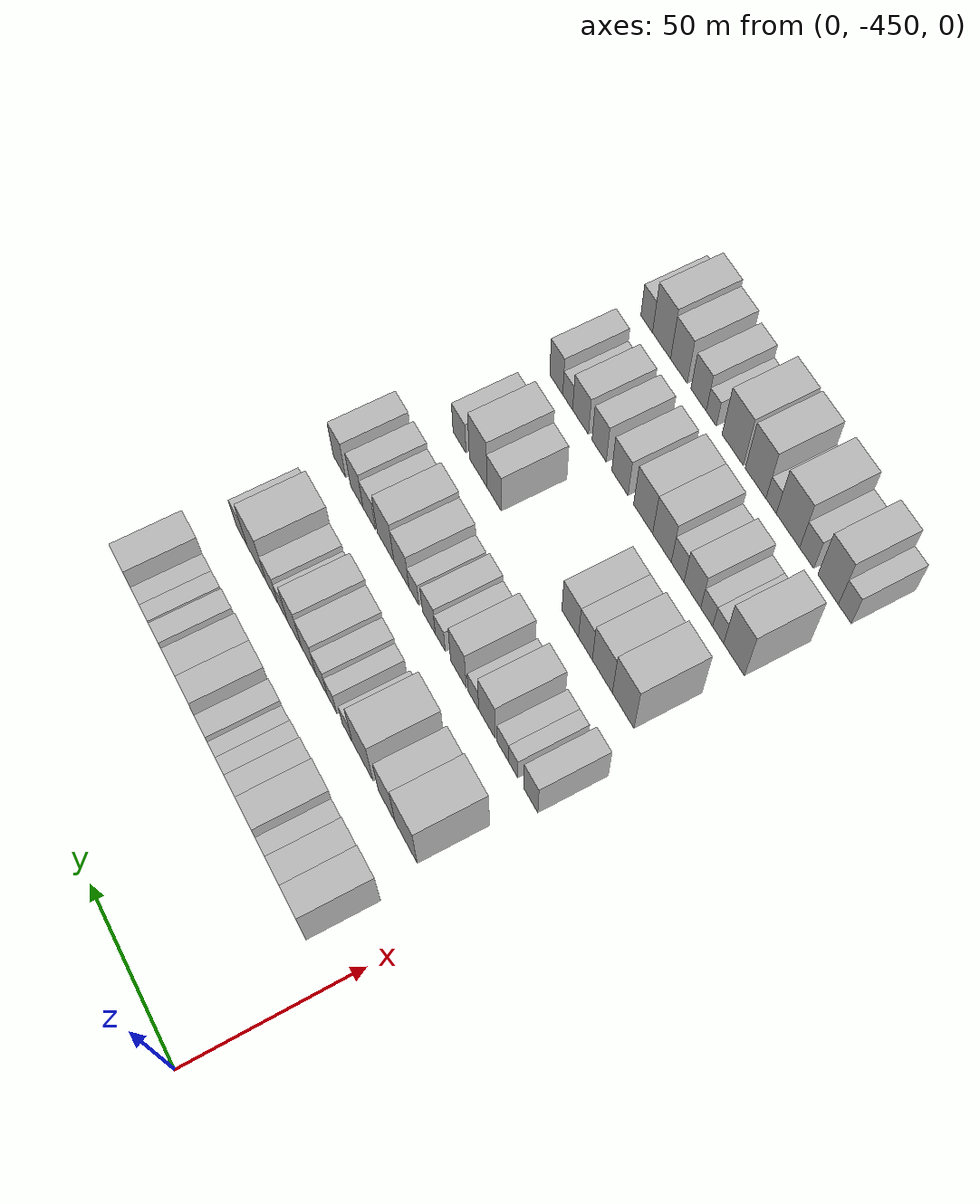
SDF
<sdf version="1.6">
 <world name="default">
  <model name="building_13">
   <static>1</static>
   <pose>50.0000 -432.8231 0 0.000000 0.000000 0.000000</pose>
   <link name="link">
    <pose>0 0 10.50 0 0 0</pose>
    <collision name="collision"><geometry><box><size>20.0000 8.9580 21.0000</size></box></geometry></collision>
    <visual name="visual">
     <cast_shadows>0</cast_shadows>
     <geometry><box><size>20.0000 8.9580 21.0000</size></box></geometry>
     <material>
      <script>
       <uri>model://HANNAS_wall/materials/scripts</uri>
       <uri>model://HANNAS_wall/materials/textures</uri>
       <name>vrc/HANNAS_wall</name>
      </script>
     </material>
    </visual>
   </link>
  </model>
  <model name="building_14">
   <static>1</static>
   <pose>50.0000 -423.9955 0 0.000000 0.000000 0.000000</pose>
   <link name="link">
    <pose>0 0 9.00 0 0 0</pose>
    <collision name="collision"><geometry><box><size>20.0000 8.6971 18.0000</size></box></geometry></collision>
    <visual name="visual">
     <cast_shadows>0</cast_shadows>
     <geometry><box><size>20.0000 8.6971 18.0000</size></box></geometry>
     <material>
      <script>
       <uri>model://HANNAS_wall/materials/scripts</uri>
       <uri>model://HANNAS_wall/materials/textures</uri>
       <name>vrc/HANNAS_wall</name>
      </script>
     </material>
    </visual>
   </link>
  </model>
  <model name="building_15">
   <static>1</static>
   <pose>50.0000 -416.5268 0 0.000000 0.000000 0.000000</pose>
   <link name="link">
    <pose>0 0 7.50 0 0 0</pose>
    <collision name="collision"><geometry><box><size>20.0000 6.2402 15.0000</size></box></geometry></collision>
    <visual name="visual">
     <cast_shadows>0</cast_shadows>
     <geometry><box><size>20.0000 6.2402 15.0000</size></box></geometry>
     <material>
      <script>
       <uri>model://HANNAS_wall/materials/scripts</uri>
       <uri>model://HANNAS_wall/materials/textures</uri>
       <name>vrc/HANNAS_wall</name>
      </script>
     </material>
    </visual>
   </link>
  </model>
  <model name="building_16">
   <static>1</static>
   <pose>50.0000 -408.7989 0 0.000000 0.000000 0.000000</pose>
   <link name="link">
    <pose>0 0 10.50 0 0 0</pose>
    <collision name="collision"><geometry><box><size>20.0000 9.2158 21.0000</size></box></geometry></collision>
    <visual name="visual">
     <cast_shadows>0</cast_shadows>
     <geometry><box><size>20.0000 9.2158 21.0000</size></box></geometry>
     <material>
      <script>
       <uri>model://HANNAS_wall/materials/scripts</uri>
       <uri>model://HANNAS_wall/materials/textures</uri>
       <name>vrc/HANNAS_wall</name>
      </script>
     </material>
    </visual>
   </link>
  </model>
  <model name="building_17">
   <static>1</static>
   <pose>50.0000 -400.5640 0 0.000000 0.000000 0.000000</pose>
   <link name="link">
    <pose>0 0 9.00 0 0 0</pose>
    <collision name="collision"><geometry><box><size>20.0000 7.2541 18.0000</size></box></geometry></collision>
    <visual name="visual">
     <cast_shadows>0</cast_shadows>
     <geometry><box><size>20.0000 7.2541 18.0000</size></box></geometry>
     <material>
      <script>
       <uri>model://HANNAS_wall/materials/scripts</uri>
       <uri>model://HANNAS_wall/materials/textures</uri>
       <name>vrc/HANNAS_wall</name>
      </script>
     </material>
    </visual>
   </link>
  </model>
  <model name="building_18">
   <static>1</static>
   <pose>50.0000 -393.8505 0 0.000000 0.000000 0.000000</pose>
   <link name="link">
    <pose>0 0 7.50 0 0 0</pose>
    <collision name="collision"><geometry><box><size>20.0000 6.1730 15.0000</size></box></geometry></collision>
    <visual name="visual">
     <cast_shadows>0</cast_shadows>
     <geometry><box><size>20.0000 6.1730 15.0000</size></box></geometry>
     <material>
      <script>
       <uri>model://HANNAS_wall/materials/scripts</uri>
       <uri>model://HANNAS_wall/materials/textures</uri>
       <name>vrc/HANNAS_wall</name>
      </script>
     </material>
    </visual>
   </link>
  </model>
  <model name="building_19">
   <static>1</static>
   <pose>50.0000 -387.8867 0 0.000000 0.000000 0.000000</pose>
   <link name="link">
    <pose>0 0 6.00 0 0 0</pose>
    <collision name="collision"><geometry><box><size>20.0000 5.7544 12.0000</size></box></geometry></collision>
    <visual name="visual">
     <cast_shadows>0</cast_shadows>
     <geometry><box><size>20.0000 5.7544 12.0000</size></box></geometry>
     <material>
      <script>
       <uri>model://HANNAS_wall/materials/scripts</uri>
       <uri>model://HANNAS_wall/materials/textures</uri>
       <name>vrc/HANNAS_wall</name>
      </script>
     </material>
    </visual>
   </link>
  </model>
  <model name="building_20">
   <static>1</static>
   <pose>50.0000 -381.6869 0 0.000000 0.000000 0.000000</pose>
   <link name="link">
    <pose>0 0 7.50 0 0 0</pose>
    <collision name="collision"><geometry><box><size>20.0000 6.6452 15.0000</size></box></geometry></collision>
    <visual name="visual">
     <cast_shadows>0</cast_shadows>
     <geometry><box><size>20.0000 6.6452 15.0000</size></box></geometry>
     <material>
      <script>
       <uri>model://HANNAS_wall/materials/scripts</uri>
       <uri>model://HANNAS_wall/materials/textures</uri>
       <name>vrc/HANNAS_wall</name>
      </script>
     </material>
    </visual>
   </link>
  </model>
  <model name="building_21">
   <static>1</static>
   <pose>50.0000 -372.2459 0 0.000000 0.000000 0.000000</pose>
   <link name="link">
    <pose>0 0 9.00 0 0 0</pose>
    <collision name="collision"><geometry><box><size>20.0000 8.2368 18.0000</size></box></geometry></collision>
    <visual name="visual">
     <cast_shadows>0</cast_shadows>
     <geometry><box><size>20.0000 8.2368 18.0000</size></box></geometry>
     <material>
      <script>
       <uri>model://HANNAS_wall/materials/scripts</uri>
       <uri>model://HANNAS_wall/materials/textures</uri>
       <name>vrc/HANNAS_wall</name>
      </script>
     </material>
    </visual>
   </link>
  </model>
  <model name="building_22">
   <static>1</static>
   <pose>50.0000 -363.9504 0 0.000000 0.000000 0.000000</pose>
   <link name="link">
    <pose>0 0 9.00 0 0 0</pose>
    <collision name="collision"><geometry><box><size>20.0000 8.3542 18.0000</size></box></geometry></collision>
    <visual name="visual">
     <cast_shadows>0</cast_shadows>
     <geometry><box><size>20.0000 8.3542 18.0000</size></box></geometry>
     <material>
      <script>
       <uri>model://HANNAS_wall/materials/scripts</uri>
       <uri>model://HANNAS_wall/materials/textures</uri>
       <name>vrc/HANNAS_wall</name>
      </script>
     </material>
    </visual>
   </link>
  </model>
  <model name="building_23">
   <static>1</static>
   <pose>50.0000 -353.6612 0 0.000000 0.000000 0.000000</pose>
   <link name="link">
    <pose>0 0 7.50 0 0 0</pose>
    <collision name="collision"><geometry><box><size>20.0000 6.2243 15.0000</size></box></geometry></collision>
    <visual name="visual">
     <cast_shadows>0</cast_shadows>
     <geometry><box><size>20.0000 6.2243 15.0000</size></box></geometry>
     <material>
      <script>
       <uri>model://HANNAS_wall/materials/scripts</uri>
       <uri>model://HANNAS_wall/materials/textures</uri>
       <name>vrc/HANNAS_wall</name>
      </script>
     </material>
    </visual>
   </link>
  </model>
  <model name="building_24">
   <static>1</static>
   <pose>50.0000 -345.9473 0 0.000000 0.000000 0.000000</pose>
   <link name="link">
    <pose>0 0 6.00 0 0 0</pose>
    <collision name="collision"><geometry><box><size>20.0000 5.2035 12.0000</size></box></geometry></collision>
    <visual name="visual">
     <cast_shadows>0</cast_shadows>
     <geometry><box><size>20.0000 5.2035 12.0000</size></box></geometry>
     <material>
      <script>
       <uri>model://HANNAS_wall/materials/scripts</uri>
       <uri>model://HANNAS_wall/materials/textures</uri>
       <name>vrc/HANNAS_wall</name>
      </script>
     </material>
    </visual>
   </link>
  </model>
  <model name="building_25">
   <static>1</static>
   <pose>50.0000 -340.5783 0 0.000000 0.000000 0.000000</pose>
   <link name="link">
    <pose>0 0 6.00 0 0 0</pose>
    <collision name="collision"><geometry><box><size>20.0000 5.5344 12.0000</size></box></geometry></collision>
    <visual name="visual">
     <cast_shadows>0</cast_shadows>
     <geometry><box><size>20.0000 5.5344 12.0000</size></box></geometry>
     <material>
      <script>
       <uri>model://HANNAS_wall/materials/scripts</uri>
       <uri>model://HANNAS_wall/materials/textures</uri>
       <name>vrc/HANNAS_wall</name>
      </script>
     </material>
    </visual>
   </link>
  </model>
  <model name="building_26">
   <static>1</static>
   <pose>50.0000 -333.3948 0 0.000000 0.000000 0.000000</pose>
   <link name="link">
    <pose>0 0 10.50 0 0 0</pose>
    <collision name="collision"><geometry><box><size>20.0000 8.8327 21.0000</size></box></geometry></collision>
    <visual name="visual">
     <cast_shadows>0</cast_shadows>
     <geometry><box><size>20.0000 8.8327 21.0000</size></box></geometry>
     <material>
      <script>
       <uri>model://HANNAS_wall/materials/scripts</uri>
       <uri>model://HANNAS_wall/materials/textures</uri>
       <name>vrc/HANNAS_wall</name>
      </script>
     </material>
    </visual>
   </link>
  </model>
  <model name="building_135">
   <static>1</static>
   <pose>82.0000 -427.3368 0 0.000000 0.000000 0.000000</pose>
   <link name="link">
    <pose>0 0 12.00 0 0 0</pose>
    <collision name="collision"><geometry><box><size>20.0000 11.9035 24.0000</size></box></geometry></collision>
    <visual name="visual">
     <cast_shadows>0</cast_shadows>
     <geometry><box><size>20.0000 11.9035 24.0000</size></box></geometry>
     <material>
      <script>
       <uri>model://HANNAS_wall/materials/scripts</uri>
       <uri>model://HANNAS_wall/materials/textures</uri>
       <name>vrc/HANNAS_wall</name>
      </script>
     </material>
    </visual>
   </link>
  </model>
  <model name="building_136">
   <static>1</static>
   <pose>82.0000 -416.8589 0 0.000000 0.000000 0.000000</pose>
   <link name="link">
    <pose>0 0 10.50 0 0 0</pose>
    <collision name="collision"><geometry><box><size>20.0000 9.0522 21.0000</size></box></geometry></collision>
    <visual name="visual">
     <cast_shadows>0</cast_shadows>
     <geometry><box><size>20.0000 9.0522 21.0000</size></box></geometry>
     <material>
      <script>
       <uri>model://HANNAS_wall/materials/scripts</uri>
       <uri>model://HANNAS_wall/materials/textures</uri>
       <name>vrc/HANNAS_wall</name>
      </script>
     </material>
    </visual>
   </link>
  </model>
  <model name="building_137">
   <static>1</static>
   <pose>82.0000 -403.5861 0 0.000000 0.000000 0.000000</pose>
   <link name="link">
    <pose>0 0 12.00 0 0 0</pose>
    <collision name="collision"><geometry><box><size>20.0000 11.4933 24.0000</size></box></geometry></collision>
    <visual name="visual">
     <cast_shadows>0</cast_shadows>
     <geometry><box><size>20.0000 11.4933 24.0000</size></box></geometry>
     <material>
      <script>
       <uri>model://HANNAS_wall/materials/scripts</uri>
       <uri>model://HANNAS_wall/materials/textures</uri>
       <name>vrc/HANNAS_wall</name>
      </script>
     </material>
    </visual>
   </link>
  </model>
  <model name="building_138">
   <static>1</static>
   <pose>82.0000 -394.9033 0 0.000000 0.000000 0.000000</pose>
   <link name="link">
    <pose>0 0 6.00 0 0 0</pose>
    <collision name="collision"><geometry><box><size>20.0000 5.8723 12.0000</size></box></geometry></collision>
    <visual name="visual">
     <cast_shadows>0</cast_shadows>
     <geometry><box><size>20.0000 5.8723 12.0000</size></box></geometry>
     <material>
      <script>
       <uri>model://HANNAS_wall/materials/scripts</uri>
       <uri>model://HANNAS_wall/materials/textures</uri>
       <name>vrc/HANNAS_wall</name>
      </script>
     </material>
    </visual>
   </link>
  </model>
  <model name="building_139">
   <static>1</static>
   <pose>82.0000 -386.2988 0 0.000000 0.000000 0.000000</pose>
   <link name="link">
    <pose>0 0 6.00 0 0 0</pose>
    <collision name="collision"><geometry><box><size>20.0000 5.3369 12.0000</size></box></geometry></collision>
    <visual name="visual">
     <cast_shadows>0</cast_shadows>
     <geometry><box><size>20.0000 5.3369 12.0000</size></box></geometry>
     <material>
      <script>
       <uri>model://HANNAS_wall/materials/scripts</uri>
       <uri>model://HANNAS_wall/materials/textures</uri>
       <name>vrc/HANNAS_wall</name>
      </script>
     </material>
    </visual>
   </link>
  </model>
  <model name="building_140">
   <static>1</static>
   <pose>82.0000 -380.3271 0 0.000000 0.000000 0.000000</pose>
   <link name="link">
    <pose>0 0 7.50 0 0 0</pose>
    <collision name="collision"><geometry><box><size>20.0000 6.6065 15.0000</size></box></geometry></collision>
    <visual name="visual">
     <cast_shadows>0</cast_shadows>
     <geometry><box><size>20.0000 6.6065 15.0000</size></box></geometry>
     <material>
      <script>
       <uri>model://HANNAS_wall/materials/scripts</uri>
       <uri>model://HANNAS_wall/materials/textures</uri>
       <name>vrc/HANNAS_wall</name>
      </script>
     </material>
    </visual>
   </link>
  </model>
  <model name="building_141">
   <static>1</static>
   <pose>82.0000 -372.7522 0 0.000000 0.000000 0.000000</pose>
   <link name="link">
    <pose>0 0 9.00 0 0 0</pose>
    <collision name="collision"><geometry><box><size>20.0000 8.5434 18.0000</size></box></geometry></collision>
    <visual name="visual">
     <cast_shadows>0</cast_shadows>
     <geometry><box><size>20.0000 8.5434 18.0000</size></box></geometry>
     <material>
      <script>
       <uri>model://HANNAS_wall/materials/scripts</uri>
       <uri>model://HANNAS_wall/materials/textures</uri>
       <name>vrc/HANNAS_wall</name>
      </script>
     </material>
    </visual>
   </link>
  </model>
  <model name="building_142">
   <static>1</static>
   <pose>82.0000 -364.2512 0 0.000000 0.000000 0.000000</pose>
   <link name="link">
    <pose>0 0 10.50 0 0 0</pose>
    <collision name="collision"><geometry><box><size>20.0000 8.4587 21.0000</size></box></geometry></collision>
    <visual name="visual">
     <cast_shadows>0</cast_shadows>
     <geometry><box><size>20.0000 8.4587 21.0000</size></box></geometry>
     <material>
      <script>
       <uri>model://HANNAS_wall/materials/scripts</uri>
       <uri>model://HANNAS_wall/materials/textures</uri>
       <name>vrc/HANNAS_wall</name>
      </script>
     </material>
    </visual>
   </link>
  </model>
  <model name="building_143">
   <static>1</static>
   <pose>82.0000 -357.2175 0 0.000000 0.000000 0.000000</pose>
   <link name="link">
    <pose>0 0 6.00 0 0 0</pose>
    <collision name="collision"><geometry><box><size>20.0000 5.6087 12.0000</size></box></geometry></collision>
    <visual name="visual">
     <cast_shadows>0</cast_shadows>
     <geometry><box><size>20.0000 5.6087 12.0000</size></box></geometry>
     <material>
      <script>
       <uri>model://HANNAS_wall/materials/scripts</uri>
       <uri>model://HANNAS_wall/materials/textures</uri>
       <name>vrc/HANNAS_wall</name>
      </script>
     </material>
    </visual>
   </link>
  </model>
  <model name="building_144">
   <static>1</static>
   <pose>82.0000 -350.7845 0 0.000000 0.000000 0.000000</pose>
   <link name="link">
    <pose>0 0 7.50 0 0 0</pose>
    <collision name="collision"><geometry><box><size>20.0000 7.2574 15.0000</size></box></geometry></collision>
    <visual name="visual">
     <cast_shadows>0</cast_shadows>
     <geometry><box><size>20.0000 7.2574 15.0000</size></box></geometry>
     <material>
      <script>
       <uri>model://HANNAS_wall/materials/scripts</uri>
       <uri>model://HANNAS_wall/materials/textures</uri>
       <name>vrc/HANNAS_wall</name>
      </script>
     </material>
    </visual>
   </link>
  </model>
  <model name="building_145">
   <static>1</static>
   <pose>82.0000 -341.2646 0 0.000000 0.000000 0.000000</pose>
   <link name="link">
    <pose>0 0 12.00 0 0 0</pose>
    <collision name="collision"><geometry><box><size>20.0000 11.7824 24.0000</size></box></geometry></collision>
    <visual name="visual">
     <cast_shadows>0</cast_shadows>
     <geometry><box><size>20.0000 11.7824 24.0000</size></box></geometry>
     <material>
      <script>
       <uri>model://HANNAS_wall/materials/scripts</uri>
       <uri>model://HANNAS_wall/materials/textures</uri>
       <name>vrc/HANNAS_wall</name>
      </script>
     </material>
    </visual>
   </link>
  </model>
  <model name="building_146">
   <static>1</static>
   <pose>82.0000 -332.0128 0 0.000000 0.000000 0.000000</pose>
   <link name="link">
    <pose>0 0 7.50 0 0 0</pose>
    <collision name="collision"><geometry><box><size>20.0000 6.7210 15.0000</size></box></geometry></collision>
    <visual name="visual">
     <cast_shadows>0</cast_shadows>
     <geometry><box><size>20.0000 6.7210 15.0000</size></box></geometry>
     <material>
      <script>
       <uri>model://HANNAS_wall/materials/scripts</uri>
       <uri>model://HANNAS_wall/materials/textures</uri>
       <name>vrc/HANNAS_wall</name>
      </script>
     </material>
    </visual>
   </link>
  </model>
  <model name="building_259">
   <static>1</static>
   <pose>114.0000 -432.4380 0 0.000000 0.000000 0.000000</pose>
   <link name="link">
    <pose>0 0 9.00 0 0 0</pose>
    <collision name="collision"><geometry><box><size>20.0000 7.3260 18.0000</size></box></geometry></collision>
    <visual name="visual">
     <cast_shadows>0</cast_shadows>
     <geometry><box><size>20.0000 7.3260 18.0000</size></box></geometry>
     <material>
      <script>
       <uri>model://HANNAS_wall/materials/scripts</uri>
       <uri>model://HANNAS_wall/materials/textures</uri>
       <name>vrc/HANNAS_wall</name>
      </script>
     </material>
    </visual>
   </link>
  </model>
  <model name="building_260">
   <static>1</static>
   <pose>114.0000 -423.3587 0 0.000000 0.000000 0.000000</pose>
   <link name="link">
    <pose>0 0 6.00 0 0 0</pose>
    <collision name="collision"><geometry><box><size>20.0000 4.8326 12.0000</size></box></geometry></collision>
    <visual name="visual">
     <cast_shadows>0</cast_shadows>
     <geometry><box><size>20.0000 4.8326 12.0000</size></box></geometry>
     <material>
      <script>
       <uri>model://HANNAS_wall/materials/scripts</uri>
       <uri>model://HANNAS_wall/materials/textures</uri>
       <name>vrc/HANNAS_wall</name>
      </script>
     </material>
    </visual>
   </link>
  </model>
  <model name="building_261">
   <static>1</static>
   <pose>114.0000 -417.9589 0 0.000000 0.000000 0.000000</pose>
   <link name="link">
    <pose>0 0 6.00 0 0 0</pose>
    <collision name="collision"><geometry><box><size>20.0000 5.9669 12.0000</size></box></geometry></collision>
    <visual name="visual">
     <cast_shadows>0</cast_shadows>
     <geometry><box><size>20.0000 5.9669 12.0000</size></box></geometry>
     <material>
      <script>
       <uri>model://HANNAS_wall/materials/scripts</uri>
       <uri>model://HANNAS_wall/materials/textures</uri>
       <name>vrc/HANNAS_wall</name>
      </script>
     </material>
    </visual>
   </link>
  </model>
  <model name="building_262">
   <static>1</static>
   <pose>114.0000 -409.5621 0 0.000000 0.000000 0.000000</pose>
   <link name="link">
    <pose>0 0 10.50 0 0 0</pose>
    <collision name="collision"><geometry><box><size>20.0000 8.8267 21.0000</size></box></geometry></collision>
    <visual name="visual">
     <cast_shadows>0</cast_shadows>
     <geometry><box><size>20.0000 8.8267 21.0000</size></box></geometry>
     <material>
      <script>
       <uri>model://HANNAS_wall/materials/scripts</uri>
       <uri>model://HANNAS_wall/materials/textures</uri>
       <name>vrc/HANNAS_wall</name>
      </script>
     </material>
    </visual>
   </link>
  </model>
  <model name="building_263">
   <static>1</static>
   <pose>114.0000 -402.2959 0 0.000000 0.000000 0.000000</pose>
   <link name="link">
    <pose>0 0 6.00 0 0 0</pose>
    <collision name="collision"><geometry><box><size>20.0000 5.7058 12.0000</size></box></geometry></collision>
    <visual name="visual">
     <cast_shadows>0</cast_shadows>
     <geometry><box><size>20.0000 5.7058 12.0000</size></box></geometry>
     <material>
      <script>
       <uri>model://HANNAS_wall/materials/scripts</uri>
       <uri>model://HANNAS_wall/materials/textures</uri>
       <name>vrc/HANNAS_wall</name>
      </script>
     </material>
    </visual>
   </link>
  </model>
  <model name="building_264">
   <static>1</static>
   <pose>114.0000 -394.1836 0 0.000000 0.000000 0.000000</pose>
   <link name="link">
    <pose>0 0 10.50 0 0 0</pose>
    <collision name="collision"><geometry><box><size>20.0000 8.5186 21.0000</size></box></geometry></collision>
    <visual name="visual">
     <cast_shadows>0</cast_shadows>
     <geometry><box><size>20.0000 8.5186 21.0000</size></box></geometry>
     <material>
      <script>
       <uri>model://HANNAS_wall/materials/scripts</uri>
       <uri>model://HANNAS_wall/materials/textures</uri>
       <name>vrc/HANNAS_wall</name>
      </script>
     </material>
    </visual>
   </link>
  </model>
  <model name="building_265">
   <static>1</static>
   <pose>114.0000 -384.1518 0 0.000000 0.000000 0.000000</pose>
   <link name="link">
    <pose>0 0 6.00 0 0 0</pose>
    <collision name="collision"><geometry><box><size>20.0000 5.5449 12.0000</size></box></geometry></collision>
    <visual name="visual">
     <cast_shadows>0</cast_shadows>
     <geometry><box><size>20.0000 5.5449 12.0000</size></box></geometry>
     <material>
      <script>
       <uri>model://HANNAS_wall/materials/scripts</uri>
       <uri>model://HANNAS_wall/materials/textures</uri>
       <name>vrc/HANNAS_wall</name>
      </script>
     </material>
    </visual>
   </link>
  </model>
  <model name="building_266">
   <static>1</static>
   <pose>114.0000 -377.8008 0 0.000000 0.000000 0.000000</pose>
   <link name="link">
    <pose>0 0 7.50 0 0 0</pose>
    <collision name="collision"><geometry><box><size>20.0000 7.1571 15.0000</size></box></geometry></collision>
    <visual name="visual">
     <cast_shadows>0</cast_shadows>
     <geometry><box><size>20.0000 7.1571 15.0000</size></box></geometry>
     <material>
      <script>
       <uri>model://HANNAS_wall/materials/scripts</uri>
       <uri>model://HANNAS_wall/materials/textures</uri>
       <name>vrc/HANNAS_wall</name>
      </script>
     </material>
    </visual>
   </link>
  </model>
  <model name="building_267">
   <static>1</static>
   <pose>114.0000 -369.3724 0 0.000000 0.000000 0.000000</pose>
   <link name="link">
    <pose>0 0 6.00 0 0 0</pose>
    <collision name="collision"><geometry><box><size>20.0000 5.6999 12.0000</size></box></geometry></collision>
    <visual name="visual">
     <cast_shadows>0</cast_shadows>
     <geometry><box><size>20.0000 5.6999 12.0000</size></box></geometry>
     <material>
      <script>
       <uri>model://HANNAS_wall/materials/scripts</uri>
       <uri>model://HANNAS_wall/materials/textures</uri>
       <name>vrc/HANNAS_wall</name>
      </script>
     </material>
    </visual>
   </link>
  </model>
  <model name="building_268">
   <static>1</static>
   <pose>114.0000 -362.1673 0 0.000000 0.000000 0.000000</pose>
   <link name="link">
    <pose>0 0 9.00 0 0 0</pose>
    <collision name="collision"><geometry><box><size>20.0000 8.7102 18.0000</size></box></geometry></collision>
    <visual name="visual">
     <cast_shadows>0</cast_shadows>
     <geometry><box><size>20.0000 8.7102 18.0000</size></box></geometry>
     <material>
      <script>
       <uri>model://HANNAS_wall/materials/scripts</uri>
       <uri>model://HANNAS_wall/materials/textures</uri>
       <name>vrc/HANNAS_wall</name>
      </script>
     </material>
    </visual>
   </link>
  </model>
  <model name="building_269">
   <static>1</static>
   <pose>114.0000 -352.9456 0 0.000000 0.000000 0.000000</pose>
   <link name="link">
    <pose>0 0 10.50 0 0 0</pose>
    <collision name="collision"><geometry><box><size>20.0000 9.7332 21.0000</size></box></geometry></collision>
    <visual name="visual">
     <cast_shadows>0</cast_shadows>
     <geometry><box><size>20.0000 9.7332 21.0000</size></box></geometry>
     <material>
      <script>
       <uri>model://HANNAS_wall/materials/scripts</uri>
       <uri>model://HANNAS_wall/materials/textures</uri>
       <name>vrc/HANNAS_wall</name>
      </script>
     </material>
    </visual>
   </link>
  </model>
  <model name="building_270">
   <static>1</static>
   <pose>114.0000 -343.3912 0 0.000000 0.000000 0.000000</pose>
   <link name="link">
    <pose>0 0 7.50 0 0 0</pose>
    <collision name="collision"><geometry><box><size>20.0000 7.3756 15.0000</size></box></geometry></collision>
    <visual name="visual">
     <cast_shadows>0</cast_shadows>
     <geometry><box><size>20.0000 7.3756 15.0000</size></box></geometry>
     <material>
      <script>
       <uri>model://HANNAS_wall/materials/scripts</uri>
       <uri>model://HANNAS_wall/materials/textures</uri>
       <name>vrc/HANNAS_wall</name>
      </script>
     </material>
    </visual>
   </link>
  </model>
  <model name="building_271">
   <static>1</static>
   <pose>114.0000 -335.9655 0 0.000000 0.000000 0.000000</pose>
   <link name="link">
    <pose>0 0 9.00 0 0 0</pose>
    <collision name="collision"><geometry><box><size>20.0000 7.4758 18.0000</size></box></geometry></collision>
    <visual name="visual">
     <cast_shadows>0</cast_shadows>
     <geometry><box><size>20.0000 7.4758 18.0000</size></box></geometry>
     <material>
      <script>
       <uri>model://HANNAS_wall/materials/scripts</uri>
       <uri>model://HANNAS_wall/materials/textures</uri>
       <name>vrc/HANNAS_wall</name>
      </script>
     </material>
    </visual>
   </link>
  </model>
  <model name="building_272">
   <static>1</static>
   <pose>114.0000 -325.4939 0 0.000000 0.000000 0.000000</pose>
   <link name="link">
    <pose>0 0 9.00 0 0 0</pose>
    <collision name="collision"><geometry><box><size>20.0000 7.4675 18.0000</size></box></geometry></collision>
    <visual name="visual">
     <cast_shadows>0</cast_shadows>
     <geometry><box><size>20.0000 7.4675 18.0000</size></box></geometry>
     <material>
      <script>
       <uri>model://HANNAS_wall/materials/scripts</uri>
       <uri>model://HANNAS_wall/materials/textures</uri>
       <name>vrc/HANNAS_wall</name>
      </script>
     </material>
    </visual>
   </link>
  </model>
  <model name="building_384">
   <static>1</static>
   <pose>146.0000 -422.8370 0 0.000000 0.000000 0.000000</pose>
   <link name="link">
    <pose>0 0 12.00 0 0 0</pose>
    <collision name="collision"><geometry><box><size>20.0000 10.9158 24.0000</size></box></geometry></collision>
    <visual name="visual">
     <cast_shadows>0</cast_shadows>
     <geometry><box><size>20.0000 10.9158 24.0000</size></box></geometry>
     <material>
      <script>
       <uri>model://HANNAS_wall/materials/scripts</uri>
       <uri>model://HANNAS_wall/materials/textures</uri>
       <name>vrc/HANNAS_wall</name>
      </script>
     </material>
    </visual>
   </link>
  </model>
  <model name="building_385">
   <static>1</static>
   <pose>146.0000 -412.2259 0 0.000000 0.000000 0.000000</pose>
   <link name="link">
    <pose>0 0 10.50 0 0 0</pose>
    <collision name="collision"><geometry><box><size>20.0000 10.3064 21.0000</size></box></geometry></collision>
    <visual name="visual">
     <cast_shadows>0</cast_shadows>
     <geometry><box><size>20.0000 10.3064 21.0000</size></box></geometry>
     <material>
      <script>
       <uri>model://HANNAS_wall/materials/scripts</uri>
       <uri>model://HANNAS_wall/materials/textures</uri>
       <name>vrc/HANNAS_wall</name>
      </script>
     </material>
    </visual>
   </link>
  </model>
  <model name="building_386">
   <static>1</static>
   <pose>146.0000 -403.4700 0 0.000000 0.000000 0.000000</pose>
   <link name="link">
    <pose>0 0 9.00 0 0 0</pose>
    <collision name="collision"><geometry><box><size>20.0000 7.2055 18.0000</size></box></geometry></collision>
    <visual name="visual">
     <cast_shadows>0</cast_shadows>
     <geometry><box><size>20.0000 7.2055 18.0000</size></box></geometry>
     <material>
      <script>
       <uri>model://HANNAS_wall/materials/scripts</uri>
       <uri>model://HANNAS_wall/materials/textures</uri>
       <name>vrc/HANNAS_wall</name>
      </script>
     </material>
    </visual>
   </link>
  </model>
  <model name="building_387">
   <static>1</static>
   <pose>146.0000 -395.5017 0 0.000000 0.000000 0.000000</pose>
   <link name="link">
    <pose>0 0 9.00 0 0 0</pose>
    <collision name="collision"><geometry><box><size>20.0000 8.7310 18.0000</size></box></geometry></collision>
    <visual name="visual">
     <cast_shadows>0</cast_shadows>
     <geometry><box><size>20.0000 8.7310 18.0000</size></box></geometry>
     <material>
      <script>
       <uri>model://HANNAS_wall/materials/scripts</uri>
       <uri>model://HANNAS_wall/materials/textures</uri>
       <name>vrc/HANNAS_wall</name>
      </script>
     </material>
    </visual>
   </link>
  </model>
  <model name="building_388">
   <static>1</static>
   <pose>146.0000 -354.1051 0 0.000000 0.000000 0.000000</pose>
   <link name="link">
    <pose>0 0 9.00 0 0 0</pose>
    <collision name="collision"><geometry><box><size>20.0000 8.0208 18.0000</size></box></geometry></collision>
    <visual name="visual">
     <cast_shadows>0</cast_shadows>
     <geometry><box><size>20.0000 8.0208 18.0000</size></box></geometry>
     <material>
      <script>
       <uri>model://HANNAS_wall/materials/scripts</uri>
       <uri>model://HANNAS_wall/materials/textures</uri>
       <name>vrc/HANNAS_wall</name>
      </script>
     </material>
    </visual>
   </link>
  </model>
  <model name="building_389">
   <static>1</static>
   <pose>146.0000 -345.0427 0 0.000000 0.000000 0.000000</pose>
   <link name="link">
    <pose>0 0 12.00 0 0 0</pose>
    <collision name="collision"><geometry><box><size>20.0000 10.1039 24.0000</size></box></geometry></collision>
    <visual name="visual">
     <cast_shadows>0</cast_shadows>
     <geometry><box><size>20.0000 10.1039 24.0000</size></box></geometry>
     <material>
      <script>
       <uri>model://HANNAS_wall/materials/scripts</uri>
       <uri>model://HANNAS_wall/materials/textures</uri>
       <name>vrc/HANNAS_wall</name>
      </script>
     </material>
    </visual>
   </link>
  </model>
  <model name="building_390">
   <static>1</static>
   <pose>146.0000 -334.2426 0 0.000000 0.000000 0.000000</pose>
   <link name="link">
    <pose>0 0 7.50 0 0 0</pose>
    <collision name="collision"><geometry><box><size>20.0000 7.4965 15.0000</size></box></geometry></collision>
    <visual name="visual">
     <cast_shadows>0</cast_shadows>
     <geometry><box><size>20.0000 7.4965 15.0000</size></box></geometry>
     <material>
      <script>
       <uri>model://HANNAS_wall/materials/scripts</uri>
       <uri>model://HANNAS_wall/materials/textures</uri>
       <name>vrc/HANNAS_wall</name>
      </script>
     </material>
    </visual>
   </link>
  </model>
  <model name="building_495">
   <static>1</static>
   <pose>178.0000 -424.3292 0 0.000000 0.000000 0.000000</pose>
   <link name="link">
    <pose>0 0 12.00 0 0 0</pose>
    <collision name="collision"><geometry><box><size>20.0000 10.1855 24.0000</size></box></geometry></collision>
    <visual name="visual">
     <cast_shadows>0</cast_shadows>
     <geometry><box><size>20.0000 10.1855 24.0000</size></box></geometry>
     <material>
      <script>
       <uri>model://HANNAS_wall/materials/scripts</uri>
       <uri>model://HANNAS_wall/materials/textures</uri>
       <name>vrc/HANNAS_wall</name>
      </script>
     </material>
    </visual>
   </link>
  </model>
  <model name="building_496">
   <static>1</static>
   <pose>178.0000 -416.5259 0 0.000000 0.000000 0.000000</pose>
   <link name="link">
    <pose>0 0 6.00 0 0 0</pose>
    <collision name="collision"><geometry><box><size>20.0000 5.4212 12.0000</size></box></geometry></collision>
    <visual name="visual">
     <cast_shadows>0</cast_shadows>
     <geometry><box><size>20.0000 5.4212 12.0000</size></box></geometry>
     <material>
      <script>
       <uri>model://HANNAS_wall/materials/scripts</uri>
       <uri>model://HANNAS_wall/materials/textures</uri>
       <name>vrc/HANNAS_wall</name>
      </script>
     </material>
    </visual>
   </link>
  </model>
  <model name="building_497">
   <static>1</static>
   <pose>178.0000 -410.8362 0 0.000000 0.000000 0.000000</pose>
   <link name="link">
    <pose>0 0 6.00 0 0 0</pose>
    <collision name="collision"><geometry><box><size>20.0000 5.9581 12.0000</size></box></geometry></collision>
    <visual name="visual">
     <cast_shadows>0</cast_shadows>
     <geometry><box><size>20.0000 5.9581 12.0000</size></box></geometry>
     <material>
      <script>
       <uri>model://HANNAS_wall/materials/scripts</uri>
       <uri>model://HANNAS_wall/materials/textures</uri>
       <name>vrc/HANNAS_wall</name>
      </script>
     </material>
    </visual>
   </link>
  </model>
  <model name="building_498">
   <static>1</static>
   <pose>178.0000 -403.6278 0 0.000000 0.000000 0.000000</pose>
   <link name="link">
    <pose>0 0 9.00 0 0 0</pose>
    <collision name="collision"><geometry><box><size>20.0000 8.4588 18.0000</size></box></geometry></collision>
    <visual name="visual">
     <cast_shadows>0</cast_shadows>
     <geometry><box><size>20.0000 8.4588 18.0000</size></box></geometry>
     <material>
      <script>
       <uri>model://HANNAS_wall/materials/scripts</uri>
       <uri>model://HANNAS_wall/materials/textures</uri>
       <name>vrc/HANNAS_wall</name>
      </script>
     </material>
    </visual>
   </link>
  </model>
  <model name="building_499">
   <static>1</static>
   <pose>178.0000 -396.1391 0 0.000000 0.000000 0.000000</pose>
   <link name="link">
    <pose>0 0 7.50 0 0 0</pose>
    <collision name="collision"><geometry><box><size>20.0000 6.5186 15.0000</size></box></geometry></collision>
    <visual name="visual">
     <cast_shadows>0</cast_shadows>
     <geometry><box><size>20.0000 6.5186 15.0000</size></box></geometry>
     <material>
      <script>
       <uri>model://HANNAS_wall/materials/scripts</uri>
       <uri>model://HANNAS_wall/materials/textures</uri>
       <name>vrc/HANNAS_wall</name>
      </script>
     </material>
    </visual>
   </link>
  </model>
  <model name="building_500">
   <static>1</static>
   <pose>178.0000 -388.0681 0 0.000000 0.000000 0.000000</pose>
   <link name="link">
    <pose>0 0 10.50 0 0 0</pose>
    <collision name="collision"><geometry><box><size>20.0000 9.6234 21.0000</size></box></geometry></collision>
    <visual name="visual">
     <cast_shadows>0</cast_shadows>
     <geometry><box><size>20.0000 9.6234 21.0000</size></box></geometry>
     <material>
      <script>
       <uri>model://HANNAS_wall/materials/scripts</uri>
       <uri>model://HANNAS_wall/materials/textures</uri>
       <name>vrc/HANNAS_wall</name>
      </script>
     </material>
    </visual>
   </link>
  </model>
  <model name="building_501">
   <static>1</static>
   <pose>178.0000 -378.2596 0 0.000000 0.000000 0.000000</pose>
   <link name="link">
    <pose>0 0 10.50 0 0 0</pose>
    <collision name="collision"><geometry><box><size>20.0000 9.9937 21.0000</size></box></geometry></collision>
    <visual name="visual">
     <cast_shadows>0</cast_shadows>
     <geometry><box><size>20.0000 9.9937 21.0000</size></box></geometry>
     <material>
      <script>
       <uri>model://HANNAS_wall/materials/scripts</uri>
       <uri>model://HANNAS_wall/materials/textures</uri>
       <name>vrc/HANNAS_wall</name>
      </script>
     </material>
    </visual>
   </link>
  </model>
  <model name="building_502">
   <static>1</static>
   <pose>178.0000 -365.9231 0 0.000000 0.000000 0.000000</pose>
   <link name="link">
    <pose>0 0 9.00 0 0 0</pose>
    <collision name="collision"><geometry><box><size>20.0000 8.6793 18.0000</size></box></geometry></collision>
    <visual name="visual">
     <cast_shadows>0</cast_shadows>
     <geometry><box><size>20.0000 8.6793 18.0000</size></box></geometry>
     <material>
      <script>
       <uri>model://HANNAS_wall/materials/scripts</uri>
       <uri>model://HANNAS_wall/materials/textures</uri>
       <name>vrc/HANNAS_wall</name>
      </script>
     </material>
    </visual>
   </link>
  </model>
  <model name="building_503">
   <static>1</static>
   <pose>178.0000 -354.7025 0 0.000000 0.000000 0.000000</pose>
   <link name="link">
    <pose>0 0 9.00 0 0 0</pose>
    <collision name="collision"><geometry><box><size>20.0000 7.7619 18.0000</size></box></geometry></collision>
    <visual name="visual">
     <cast_shadows>0</cast_shadows>
     <geometry><box><size>20.0000 7.7619 18.0000</size></box></geometry>
     <material>
      <script>
       <uri>model://HANNAS_wall/materials/scripts</uri>
       <uri>model://HANNAS_wall/materials/textures</uri>
       <name>vrc/HANNAS_wall</name>
      </script>
     </material>
    </visual>
   </link>
  </model>
  <model name="building_504">
   <static>1</static>
   <pose>178.0000 -344.4427 0 0.000000 0.000000 0.000000</pose>
   <link name="link">
    <pose>0 0 9.00 0 0 0</pose>
    <collision name="collision"><geometry><box><size>20.0000 8.7576 18.0000</size></box></geometry></collision>
    <visual name="visual">
     <cast_shadows>0</cast_shadows>
     <geometry><box><size>20.0000 8.7576 18.0000</size></box></geometry>
     <material>
      <script>
       <uri>model://HANNAS_wall/materials/scripts</uri>
       <uri>model://HANNAS_wall/materials/textures</uri>
       <name>vrc/HANNAS_wall</name>
      </script>
     </material>
    </visual>
   </link>
  </model>
  <model name="building_505">
   <static>1</static>
   <pose>178.0000 -337.3018 0 0.000000 0.000000 0.000000</pose>
   <link name="link">
    <pose>0 0 6.00 0 0 0</pose>
    <collision name="collision"><geometry><box><size>20.0000 5.5242 12.0000</size></box></geometry></collision>
    <visual name="visual">
     <cast_shadows>0</cast_shadows>
     <geometry><box><size>20.0000 5.5242 12.0000</size></box></geometry>
     <material>
      <script>
       <uri>model://HANNAS_wall/materials/scripts</uri>
       <uri>model://HANNAS_wall/materials/textures</uri>
       <name>vrc/HANNAS_wall</name>
      </script>
     </material>
    </visual>
   </link>
  </model>
  <model name="building_506">
   <static>1</static>
   <pose>178.0000 -330.8714 0 0.000000 0.000000 0.000000</pose>
   <link name="link">
    <pose>0 0 9.00 0 0 0</pose>
    <collision name="collision"><geometry><box><size>20.0000 7.3366 18.0000</size></box></geometry></collision>
    <visual name="visual">
     <cast_shadows>0</cast_shadows>
     <geometry><box><size>20.0000 7.3366 18.0000</size></box></geometry>
     <material>
      <script>
       <uri>model://HANNAS_wall/materials/scripts</uri>
       <uri>model://HANNAS_wall/materials/textures</uri>
       <name>vrc/HANNAS_wall</name>
      </script>
     </material>
    </visual>
   </link>
  </model>
  <model name="building_615">
   <static>1</static>
   <pose>210.0000 -427.2001 0 0.000000 0.000000 0.000000</pose>
   <link name="link">
    <pose>0 0 7.50 0 0 0</pose>
    <collision name="collision"><geometry><box><size>20.0000 6.1717 15.0000</size></box></geometry></collision>
    <visual name="visual">
     <cast_shadows>0</cast_shadows>
     <geometry><box><size>20.0000 6.1717 15.0000</size></box></geometry>
     <material>
      <script>
       <uri>model://HANNAS_wall/materials/scripts</uri>
       <uri>model://HANNAS_wall/materials/textures</uri>
       <name>vrc/HANNAS_wall</name>
      </script>
     </material>
    </visual>
   </link>
  </model>
  <model name="building_616">
   <static>1</static>
   <pose>210.0000 -419.2128 0 0.000000 0.000000 0.000000</pose>
   <link name="link">
    <pose>0 0 12.00 0 0 0</pose>
    <collision name="collision"><geometry><box><size>20.0000 9.8029 24.0000</size></box></geometry></collision>
    <visual name="visual">
     <cast_shadows>0</cast_shadows>
     <geometry><box><size>20.0000 9.8029 24.0000</size></box></geometry>
     <material>
      <script>
       <uri>model://HANNAS_wall/materials/scripts</uri>
       <uri>model://HANNAS_wall/materials/textures</uri>
       <name>vrc/HANNAS_wall</name>
      </script>
     </material>
    </visual>
   </link>
  </model>
  <model name="building_617">
   <static>1</static>
   <pose>210.0000 -408.8625 0 0.000000 0.000000 0.000000</pose>
   <link name="link">
    <pose>0 0 7.50 0 0 0</pose>
    <collision name="collision"><geometry><box><size>20.0000 6.8977 15.0000</size></box></geometry></collision>
    <visual name="visual">
     <cast_shadows>0</cast_shadows>
     <geometry><box><size>20.0000 6.8977 15.0000</size></box></geometry>
     <material>
      <script>
       <uri>model://HANNAS_wall/materials/scripts</uri>
       <uri>model://HANNAS_wall/materials/textures</uri>
       <name>vrc/HANNAS_wall</name>
      </script>
     </material>
    </visual>
   </link>
  </model>
  <model name="building_618">
   <static>1</static>
   <pose>210.0000 -399.6324 0 0.000000 0.000000 0.000000</pose>
   <link name="link">
    <pose>0 0 12.00 0 0 0</pose>
    <collision name="collision"><geometry><box><size>20.0000 11.5626 24.0000</size></box></geometry></collision>
    <visual name="visual">
     <cast_shadows>0</cast_shadows>
     <geometry><box><size>20.0000 11.5626 24.0000</size></box></geometry>
     <material>
      <script>
       <uri>model://HANNAS_wall/materials/scripts</uri>
       <uri>model://HANNAS_wall/materials/textures</uri>
       <name>vrc/HANNAS_wall</name>
      </script>
     </material>
    </visual>
   </link>
  </model>
  <model name="building_619">
   <static>1</static>
   <pose>210.0000 -391.2510 0 0.000000 0.000000 0.000000</pose>
   <link name="link">
    <pose>0 0 6.00 0 0 0</pose>
    <collision name="collision"><geometry><box><size>20.0000 5.2004 12.0000</size></box></geometry></collision>
    <visual name="visual">
     <cast_shadows>0</cast_shadows>
     <geometry><box><size>20.0000 5.2004 12.0000</size></box></geometry>
     <material>
      <script>
       <uri>model://HANNAS_wall/materials/scripts</uri>
       <uri>model://HANNAS_wall/materials/textures</uri>
       <name>vrc/HANNAS_wall</name>
      </script>
     </material>
    </visual>
   </link>
  </model>
  <model name="building_620">
   <static>1</static>
   <pose>210.0000 -383.4089 0 0.000000 0.000000 0.000000</pose>
   <link name="link">
    <pose>0 0 12.00 0 0 0</pose>
    <collision name="collision"><geometry><box><size>20.0000 10.4837 24.0000</size></box></geometry></collision>
    <visual name="visual">
     <cast_shadows>0</cast_shadows>
     <geometry><box><size>20.0000 10.4837 24.0000</size></box></geometry>
     <material>
      <script>
       <uri>model://HANNAS_wall/materials/scripts</uri>
       <uri>model://HANNAS_wall/materials/textures</uri>
       <name>vrc/HANNAS_wall</name>
      </script>
     </material>
    </visual>
   </link>
  </model>
  <model name="building_621">
   <static>1</static>
   <pose>210.0000 -371.6850 0 0.000000 0.000000 0.000000</pose>
   <link name="link">
    <pose>0 0 12.00 0 0 0</pose>
    <collision name="collision"><geometry><box><size>20.0000 10.9642 24.0000</size></box></geometry></collision>
    <visual name="visual">
     <cast_shadows>0</cast_shadows>
     <geometry><box><size>20.0000 10.9642 24.0000</size></box></geometry>
     <material>
      <script>
       <uri>model://HANNAS_wall/materials/scripts</uri>
       <uri>model://HANNAS_wall/materials/textures</uri>
       <name>vrc/HANNAS_wall</name>
      </script>
     </material>
    </visual>
   </link>
  </model>
  <model name="building_622">
   <static>1</static>
   <pose>210.0000 -360.5433 0 0.000000 0.000000 0.000000</pose>
   <link name="link">
    <pose>0 0 6.00 0 0 0</pose>
    <collision name="collision"><geometry><box><size>20.0000 5.3190 12.0000</size></box></geometry></collision>
    <visual name="visual">
     <cast_shadows>0</cast_shadows>
     <geometry><box><size>20.0000 5.3190 12.0000</size></box></geometry>
     <material>
      <script>
       <uri>model://HANNAS_wall/materials/scripts</uri>
       <uri>model://HANNAS_wall/materials/textures</uri>
       <name>vrc/HANNAS_wall</name>
      </script>
     </material>
    </visual>
   </link>
  </model>
  <model name="building_623">
   <static>1</static>
   <pose>210.0000 -353.8302 0 0.000000 0.000000 0.000000</pose>
   <link name="link">
    <pose>0 0 9.00 0 0 0</pose>
    <collision name="collision"><geometry><box><size>20.0000 8.1072 18.0000</size></box></geometry></collision>
    <visual name="visual">
     <cast_shadows>0</cast_shadows>
     <geometry><box><size>20.0000 8.1072 18.0000</size></box></geometry>
     <material>
      <script>
       <uri>model://HANNAS_wall/materials/scripts</uri>
       <uri>model://HANNAS_wall/materials/textures</uri>
       <name>vrc/HANNAS_wall</name>
      </script>
     </material>
    </visual>
   </link>
  </model>
  <model name="building_624">
   <static>1</static>
   <pose>210.0000 -343.2902 0 0.000000 0.000000 0.000000</pose>
   <link name="link">
    <pose>0 0 10.50 0 0 0</pose>
    <collision name="collision"><geometry><box><size>20.0000 8.9728 21.0000</size></box></geometry></collision>
    <visual name="visual">
     <cast_shadows>0</cast_shadows>
     <geometry><box><size>20.0000 8.9728 21.0000</size></box></geometry>
     <material>
      <script>
       <uri>model://HANNAS_wall/materials/scripts</uri>
       <uri>model://HANNAS_wall/materials/textures</uri>
       <name>vrc/HANNAS_wall</name>
      </script>
     </material>
    </visual>
   </link>
  </model>
  <model name="building_625">
   <static>1</static>
   <pose>210.0000 -333.8599 0 0.000000 0.000000 0.000000</pose>
   <link name="link">
    <pose>0 0 12.00 0 0 0</pose>
    <collision name="collision"><geometry><box><size>20.0000 9.8877 24.0000</size></box></geometry></collision>
    <visual name="visual">
     <cast_shadows>0</cast_shadows>
     <geometry><box><size>20.0000 9.8877 24.0000</size></box></geometry>
     <material>
      <script>
       <uri>model://HANNAS_wall/materials/scripts</uri>
       <uri>model://HANNAS_wall/materials/textures</uri>
       <name>vrc/HANNAS_wall</name>
      </script>
     </material>
    </visual>
   </link>
  </model>
  <model name="building_626">
   <static>1</static>
   <pose>210.0000 -325.6822 0 0.000000 0.000000 0.000000</pose>
   <link name="link">
    <pose>0 0 7.50 0 0 0</pose>
    <collision name="collision"><geometry><box><size>20.0000 6.4678 15.0000</size></box></geometry></collision>
    <visual name="visual">
     <cast_shadows>0</cast_shadows>
     <geometry><box><size>20.0000 6.4678 15.0000</size></box></geometry>
     <material>
      <script>
       <uri>model://HANNAS_wall/materials/scripts</uri>
       <uri>model://HANNAS_wall/materials/textures</uri>
       <name>vrc/HANNAS_wall</name>
      </script>
     </material>
    </visual>
   </link>
  </model>
 </world>
</sdf>
